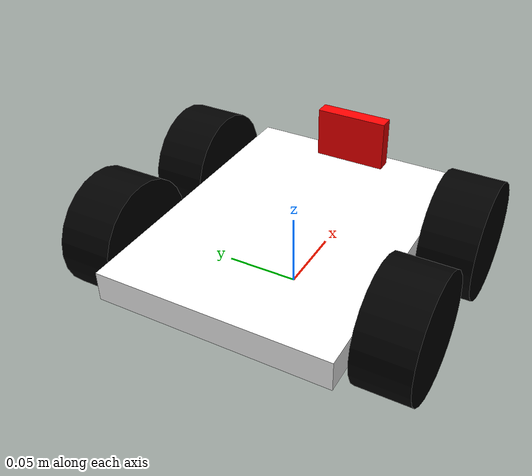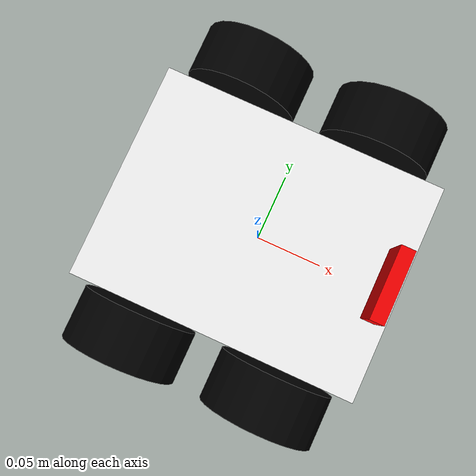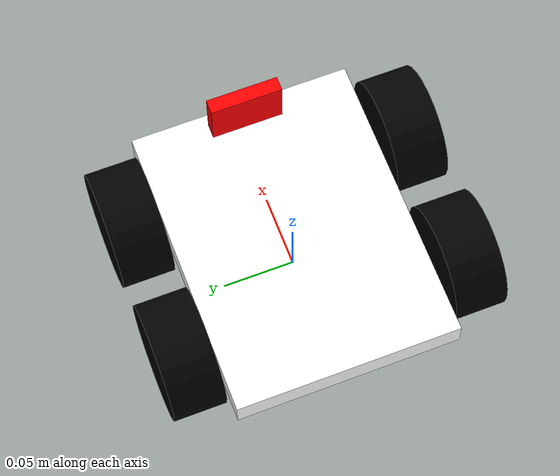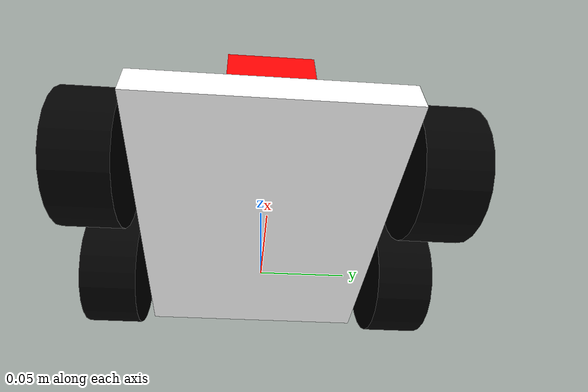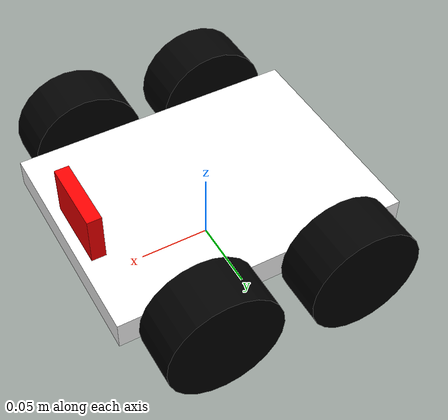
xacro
<?xml version="1.0"?>
<robot xmlns:xacro="http://www.ros.org/wiki/xacro" name="robot_xacro">
<xacro:include filename="$(find myrobot_gazebo)/urdf/myrobot_descr.gazebo"/>

<!-- ROBOT -->
	<xacro:property name="length_wheel" value="0.036" />
	<xacro:property name="radius_wheel" value="0.04" />

	<xacro:macro name="default_inertial" params="mass">
               <inertial>
                       <mass value="${mass}" />
                       <inertia ixx="1.0" ixy="0.0" ixz="0.0"
                                iyy="1.0" iyz="0.0"
                                izz="1.0" />
               </inertial>
	</xacro:macro>

        <xacro:macro name="wheel_geometry">
		<geometry>
       			<cylinder length="${length_wheel}" radius="${radius_wheel}"/>
     		</geometry>
	</xacro:macro>

	<link name="base_link">
   		<visual>
     			<geometry>
       				<box size="0.205 0.155 0.02"/>
     			</geometry>
			<origin rpy="0 0 0" xyz="0 0 0.04"/>
			<material name="white">
				<color rgba="1 1 1 1"/>
			</material>
   		</visual>
		<collision>
			<geometry>
       				<box size="0.205 0.155 0.02"/>
			</geometry>
		</collision>
		<xacro:default_inertial mass="1"/>

 	</link>

 	<link name="wheel_1">
   		<visual>
     			<xacro:wheel_geometry />
			<origin rpy="0 1.5707 1.5707" xyz="0.0 0.0 0"/>
   			<material name="black">
				<color rgba="0 0 0 1"/>
			</material>
		</visual>
		<collision>
			<xacro:wheel_geometry />
		</collision>
		<xacro:default_inertial mass="0.01"/>
 	</link>

 	<link name="wheel_2">
   		<visual>
     			<xacro:wheel_geometry />
			<origin rpy="0 1.5707 1.5707" xyz="-0.0 0.0 0"/>
   			<material name="black"/>
   		</visual>
		<collision>
			<xacro:wheel_geometry />
		</collision>
		<xacro:default_inertial mass="0.01"/>
 	</link>

 	<link name="wheel_3">
   		<visual>
 			<xacro:wheel_geometry />
			<origin rpy="0 1.5707 1.5707" xyz="0.0 -0.0 0"/>
   			<material name="black"/>
   		</visual>
		<collision>
			<xacro:wheel_geometry />
		</collision>
		<xacro:default_inertial mass="0.01"/>
 	</link>

 	<link name="wheel_4">
   		<visual>
  			 <xacro:wheel_geometry />
			<origin rpy="0 1.5707 1.5707" xyz="-0.0 -0.0 0"/>
   			<material name="black"/>
   		</visual>
		<collision>
			<xacro:wheel_geometry />
		</collision>
		<xacro:default_inertial mass="0.01"/>
 	</link>

 	<joint name="base_to_wheel1" type="continuous">
		<parent link="base_link"/>
		<child link="wheel_1"/>
                <axis xyz="1 0 0"/>
		<origin xyz="0.05 0.098 0.04"/>
	</joint>

	<joint name="base_to_wheel2" type="continuous">
		<parent link="base_link"/>
		<child link="wheel_2"/>
                <axis xyz="1 0 0"/>
		<origin xyz="-0.05 0.098 0.04"/>
	</joint>

	<joint name="base_to_wheel3" type="continuous">
		<parent link="base_link"/>
		<child link="wheel_3"/>
                <axis xyz="1 0 0"/>
		<origin xyz="0.05 -0.098 0.04"/>
	</joint>

	<joint name="base_to_wheel4" type="continuous">
		<parent link="base_link"/>
		<child link="wheel_4"/>
                <axis xyz="1 0 0"/>
		<origin xyz="-0.05 -0.098 0.04"/>
	</joint>

<!-- CAMERA -->
	 <joint name="camera_joint" type="fixed">
	    <axis xyz="-1 0 0" />
	    <origin xyz="0.090 0 0.06" rpy="0 0 0"/>
	    <parent link="base_link"/>
	    <child link="camera_link"/>
	  </joint>

	  <link name="camera_link">
	    <collision>
	      <origin xyz="0 0 0" rpy="0 0 0"/>
	      <geometry>
		<box size="0.01 0.05 0.05"/>
	      </geometry>
	    </collision>

	    <visual>
	      <origin xyz="0 0 0" rpy="0 0 0"/>
	      <geometry>
		<box size="0.01 0.05 0.05"/>
	      </geometry>
	      <material name="red">
		<color rgba="1 0 0 1"/>
	      </material>
	    </visual>

	    <inertial>
	      <mass value="1e-5" />
	      <origin xyz="0 0 0" rpy="0 0 0"/>
	      <inertia ixx="1e-6" ixy="0" ixz="0" iyy="1e-6" iyz="0" izz="1e-6" />
	    </inertial>
	  </link>

	<!-- ros_control plugin -->
	<!-- Allow the robots to move in x-y directions -->
	<gazebo>
	    <plugin name="object_controller" filename="libgazebo_ros_planar_move.so">
	      <commandTopic>cmd_vel</commandTopic>
	      <odometryTopic>odom</odometryTopic>
	      <odometryFrame>odom</odometryFrame>
	      <odometryRate>20.0</odometryRate>
	      <robotBaseFrame>base_link</robotBaseFrame>
	    </plugin>
  	</gazebo>

</robot>
